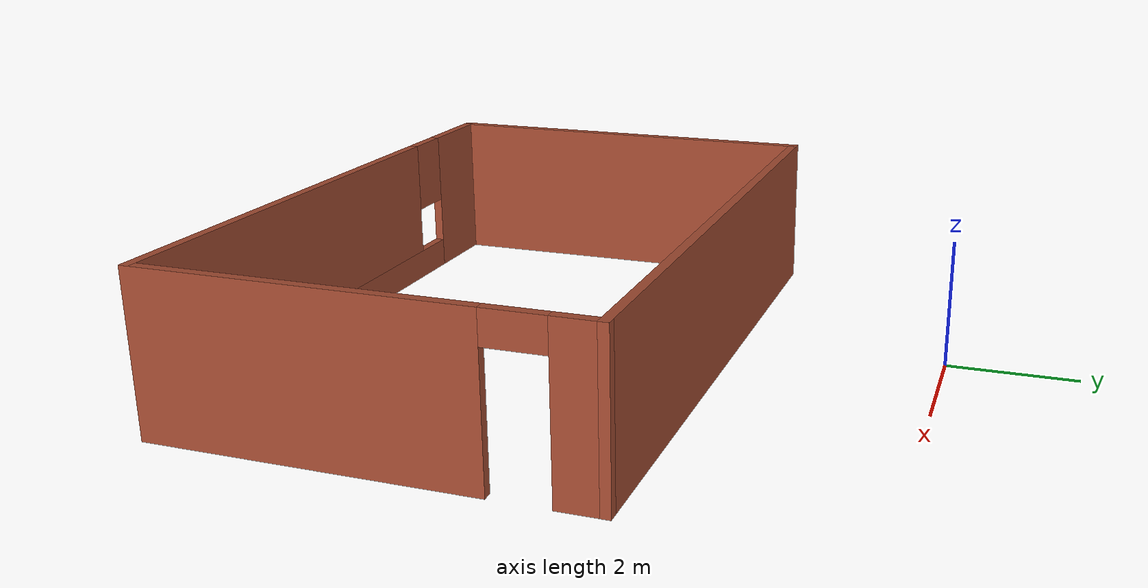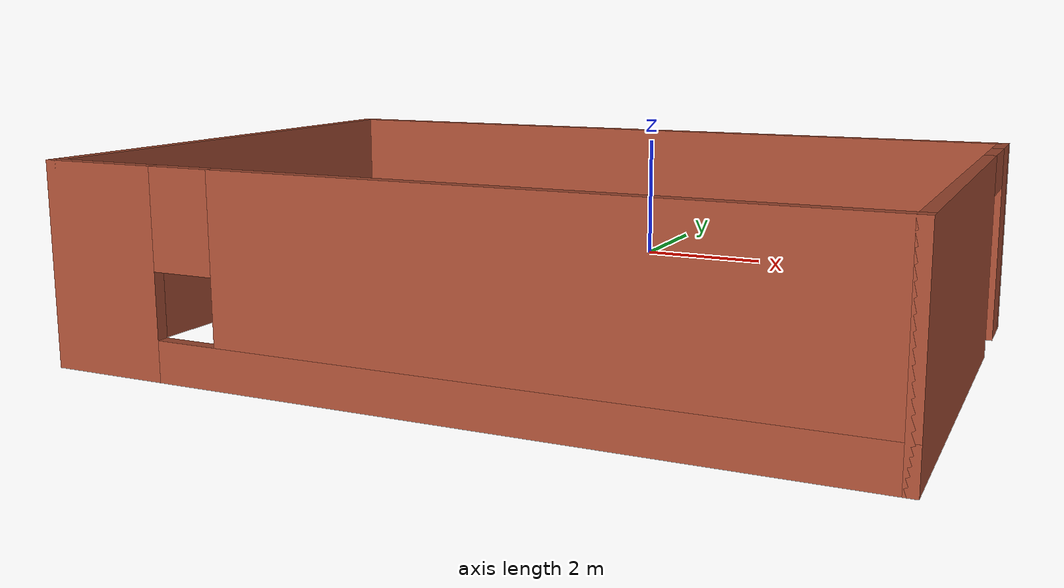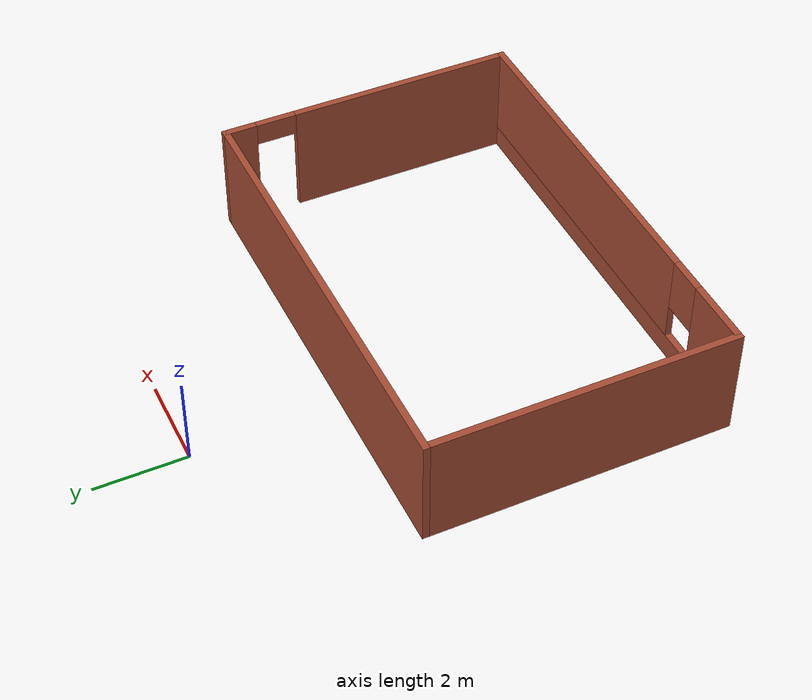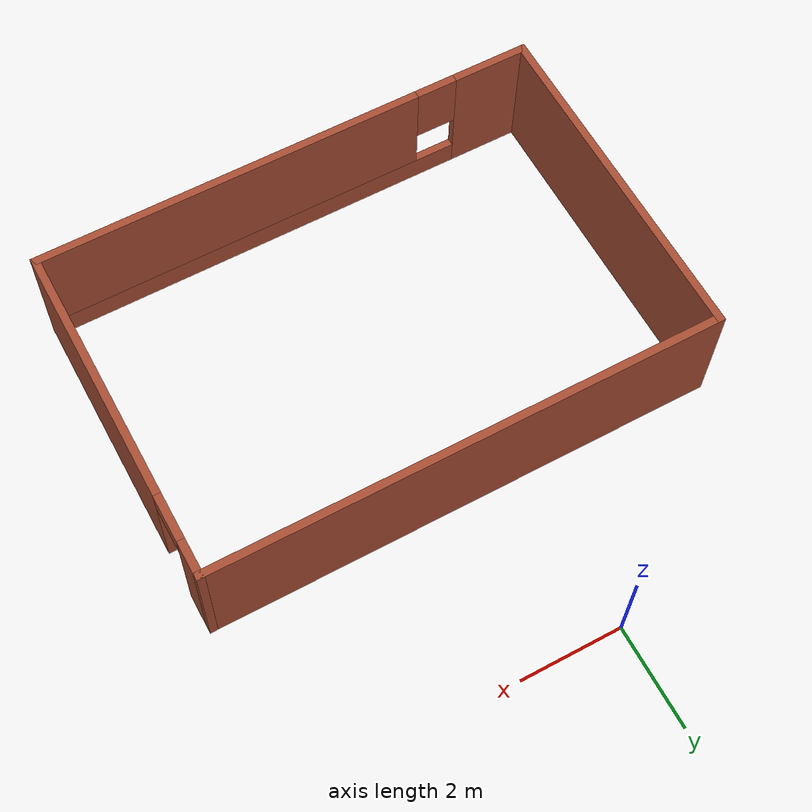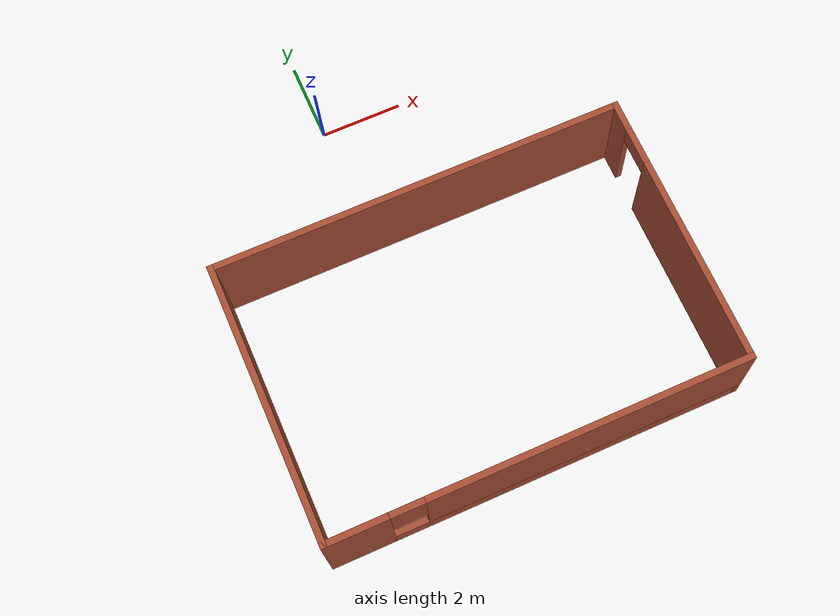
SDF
<?xml version='1.0'?>
<sdf version='1.7'>
  <model name='create_robot'>
    <pose>1.22173 -4.99169 0 0 -0 0</pose>
    <link name='Wall_6'>
      <collision name='Wall_6_Collision'>
        <geometry>
          <box>
            <size>6.75 0.15 2.5</size>
          </box>
        </geometry>
        <pose>0 0 1.25 0 -0 0</pose>
      </collision>
      <visual name='Wall_6_Visual'>
        <pose>0 0 1.25 0 -0 0</pose>
        <geometry>
          <box>
            <size>6.75 0.15 2.5</size>
          </box>
        </geometry>
        <material>
          <script>
            <uri>file://media/materials/scripts/gazebo.material</uri>
            <name>Gazebo/Bricks</name>
          </script>
          <ambient>1 1 1 1</ambient>
        </material>
        <meta>
          <layer>0</layer>
        </meta>
      </visual>
      <pose>-4.925 -1.61669 0 0 -0 -1.5708</pose>
    </link>
    <link name='Wall_7'>
      <pose>0 -4.91669 0 0 -0 0</pose>
      <visual name='Wall_7_Visual_0'>
        <pose>-4.2325 0 1.25 0 -0 0</pose>
        <geometry>
          <box>
            <size>1.535 0.15 2.5</size>
          </box>
        </geometry>
        <material>
          <script>
            <uri>file://media/materials/scripts/gazebo.material</uri>
            <name>Gazebo/Bricks</name>
          </script>
          <ambient>1 1 1 1</ambient>
        </material>
        <meta>
          <layer>0</layer>
        </meta>
      </visual>
      <collision name='Wall_7_Collision_0'>
        <geometry>
          <box>
            <size>1.535 0.15 2.5</size>
          </box>
        </geometry>
        <pose>-4.2325 0 1.25 0 -0 0</pose>
      </collision>
      <visual name='Wall_7_Visual_1'>
        <pose>0.7675 0 0.25 0 -0 0</pose>
        <geometry>
          <box>
            <size>8.465 0.15 0.5</size>
          </box>
        </geometry>
        <material>
          <script>
            <uri>file://media/materials/scripts/gazebo.material</uri>
            <name>Gazebo/Bricks</name>
          </script>
          <ambient>1 1 1 1</ambient>
        </material>
        <meta>
          <layer>0</layer>
        </meta>
      </visual>
      <collision name='Wall_7_Collision_1'>
        <geometry>
          <box>
            <size>8.465 0.15 0.5</size>
          </box>
        </geometry>
        <pose>0.7675 0 0.25 0 -0 0</pose>
      </collision>
      <visual name='Wall_7_Visual_2'>
        <pose>1.1675 0 1.5 0 -0 0</pose>
        <geometry>
          <box>
            <size>7.665 0.15 2</size>
          </box>
        </geometry>
        <material>
          <script>
            <uri>file://media/materials/scripts/gazebo.material</uri>
            <name>Gazebo/Bricks</name>
          </script>
          <ambient>1 1 1 1</ambient>
        </material>
        <meta>
          <layer>0</layer>
        </meta>
      </visual>
      <collision name='Wall_7_Collision_2'>
        <geometry>
          <box>
            <size>7.665 0.15 2</size>
          </box>
        </geometry>
        <pose>1.1675 0 1.5 0 -0 0</pose>
      </collision>
      <visual name='Wall_7_Visual_3'>
        <pose>-3.065 0 1.9 0 -0 0</pose>
        <geometry>
          <box>
            <size>0.8 0.15 1.2</size>
          </box>
        </geometry>
        <material>
          <script>
            <uri>file://media/materials/scripts/gazebo.material</uri>
            <name>Gazebo/Bricks</name>
          </script>
          <ambient>1 1 1 1</ambient>
        </material>
        <meta>
          <layer>0</layer>
        </meta>
      </visual>
      <collision name='Wall_7_Collision_3'>
        <geometry>
          <box>
            <size>0.8 0.15 1.2</size>
          </box>
        </geometry>
        <pose>-3.065 0 1.9 0 -0 0</pose>
      </collision>
    </link>
    <link name='Wall_8'>
      <pose>4.925 -1.61669 0 0 -0 1.5708</pose>
      <visual name='Wall_8_Visual_0'>
        <pose>-0.8275 0 1.25 0 -0 0</pose>
        <geometry>
          <box>
            <size>5.095 0.15 2.5</size>
          </box>
        </geometry>
        <material>
          <script>
            <uri>file://media/materials/scripts/gazebo.material</uri>
            <name>Gazebo/Bricks</name>
          </script>
          <ambient>1 1 1 1</ambient>
        </material>
        <meta>
          <layer>0</layer>
        </meta>
      </visual>
      <collision name='Wall_8_Collision_0'>
        <geometry>
          <box>
            <size>5.095 0.15 2.5</size>
          </box>
        </geometry>
        <pose>-0.8275 0 1.25 0 -0 0</pose>
      </collision>
      <visual name='Wall_8_Visual_1'>
        <pose>2.9975 0 1.25 0 -0 0</pose>
        <geometry>
          <box>
            <size>0.755 0.15 2.5</size>
          </box>
        </geometry>
        <material>
          <script>
            <uri>file://media/materials/scripts/gazebo.material</uri>
            <name>Gazebo/Bricks</name>
          </script>
          <ambient>1 1 1 1</ambient>
        </material>
        <meta>
          <layer>0</layer>
        </meta>
      </visual>
      <collision name='Wall_8_Collision_1'>
        <geometry>
          <box>
            <size>0.755 0.15 2.5</size>
          </box>
        </geometry>
        <pose>2.9975 0 1.25 0 -0 0</pose>
      </collision>
      <visual name='Wall_8_Visual_2'>
        <pose>2.17 0 2.25 0 -0 0</pose>
        <geometry>
          <box>
            <size>0.9 0.15 0.5</size>
          </box>
        </geometry>
        <material>
          <script>
            <uri>file://media/materials/scripts/gazebo.material</uri>
            <name>Gazebo/Bricks</name>
          </script>
          <ambient>1 1 1 1</ambient>
        </material>
        <meta>
          <layer>0</layer>
        </meta>
      </visual>
      <collision name='Wall_8_Collision_2'>
        <geometry>
          <box>
            <size>0.9 0.15 0.5</size>
          </box>
        </geometry>
        <pose>2.17 0 2.25 0 -0 0</pose>
      </collision>
    </link>
    <link name='Wall_9'>
      <collision name='Wall_9_Collision'>
        <geometry>
          <box>
            <size>10 0.15 2.5</size>
          </box>
        </geometry>
        <pose>0 0 1.25 0 -0 0</pose>
      </collision>
      <visual name='Wall_9_Visual'>
        <pose>0 0 1.25 0 -0 0</pose>
        <geometry>
          <box>
            <size>10 0.15 2.5</size>
          </box>
        </geometry>
        <material>
          <script>
            <uri>file://media/materials/scripts/gazebo.material</uri>
            <name>Gazebo/Bricks</name>
          </script>
          <ambient>1 1 1 1</ambient>
        </material>
        <meta>
          <layer>0</layer>
        </meta>
      </visual>
      <pose>0 1.68331 0 0 -0 3.14159</pose>
    </link>
    <static>1</static>
  </model>
</sdf>
